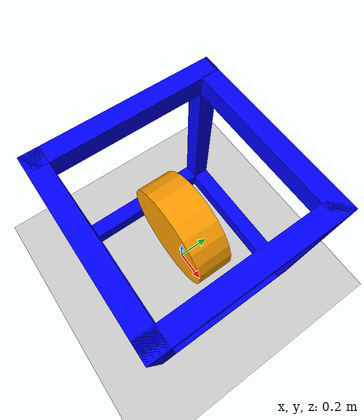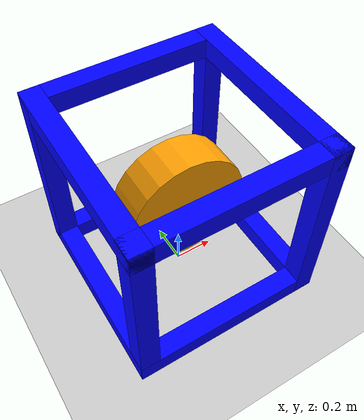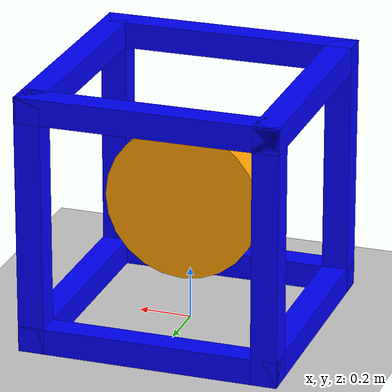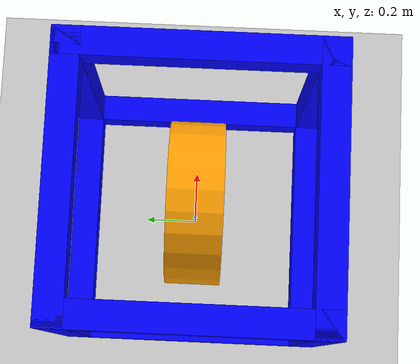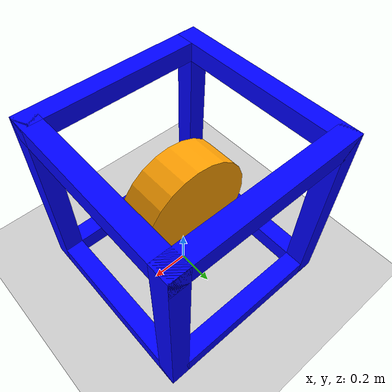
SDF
<?xml version='1.0' encoding='utf-8'?>
<sdf version="1.7">&lt;?xml version="1.0"?&gt;
	<world name="moving_cube">

		<physics name="1ms" type="ignored">
			<max_step_size>0.001</max_step_size>
			<real_time_factor>1.0</real_time_factor>
		</physics>
		<plugin
			filename="libignition-gazebo-physics-system.so"
			name="ignition::gazebo::systems::Physics">
		</plugin>
		<plugin
			filename="libignition-gazebo-user-commands-system.so"
			name="ignition::gazebo::systems::UserCommands">
		</plugin>
		<plugin
			filename="libignition-gazebo-scene-broadcaster-system.so"
			name="ignition::gazebo::systems::SceneBroadcaster">
		</plugin>

		<light type="directional" name="sun">
			<cast_shadows>true</cast_shadows>
			<pose>0 0 10 0 0 0</pose>
			<diffuse>0.8 0.8 0.8 1</diffuse>
			<specular>0.2 0.2 0.2 1</specular>
			<attenuation>
				<range>1000</range>
				<constant>0.9</constant>
				<linear>0.01</linear>
				<quadratic>0.001</quadratic>
			</attenuation>
			<direction>-0.5 0.1 -0.9</direction>
		</light>

		<model name="ground_plane">
			<static>true</static>
			<link name="link">
				<collision name="collision">
					<geometry>
					<plane>
						<normal>0 0 1</normal>
					</plane>
					</geometry>
				</collision>
				<visual name="visual">
					<geometry>
					<plane>
						<normal>0 0 1</normal>
						<size>100 100</size>
					</plane>
					</geometry>
					<material>
						<ambient>0.8 0.8 0.8 1</ambient>
						<diffuse>0.8 0.8 0.8 1</diffuse>
						<specular>0.8 0.8 0.8 1</specular>
					</material>
				</visual>
			</link>
		</model>

		<model name="robot">
			<link name="cube_frame">
				<inertial>
					<pose>0 0 0.5 0 0 0</pose>
					<mass>1</mass>
					<inertia>
						<ixx>0.10000000000000001</ixx>
						<ixy>0</ixy>
						<ixz>0</ixz>
						<iyy>0.10000000000000001</iyy>
						<iyz>0</iyz>
						<izz>0.10000000000000001</izz>
					</inertia>
				</inertial>
				<collision name="cube_frame_fixed_joint_lump__collision_collision">
					<pose>0 0 0.5 0 0 0</pose>
					<geometry>
						<box>
							<size>1 1 1</size>
						</box>
					</geometry>
				</collision>
				<visual name="cube_frame_fixed_joint_lump__ZXY_visual">
					<pose>0.45 0.45 0.5 0 0 0</pose>
					<geometry>
						<box>
							<size>0.1 0.1 1</size>
						</box>
					</geometry>
					<material>
						<diffuse>0 0 1 1</diffuse>
						<ambient>0 0 1 1</ambient>
					</material>
				</visual>
				<visual name="cube_frame_fixed_joint_lump__ZX_Y_visual_1">
					<pose>-0.45 0.45 0.5 0 0 0</pose>
					<geometry>
						<box>
							<size>0.1 0.1 1</size>
						</box>
					</geometry>
					<material>
						<diffuse>0 0 1 1</diffuse>
						<ambient>0 0 1 1</ambient>
					</material>
				</visual>
				<visual name="cube_frame_fixed_joint_lump__ZXY__visual_2">
					<pose>0.45 -0.45 0.5 0 0 0</pose>
					<geometry>
						<box>
							<size>0.1 0.1 1</size>
						</box>
					</geometry>
					<material>
						<diffuse>0 0 1 1</diffuse>
						<ambient>0 0 1 1</ambient>
					</material>
				</visual>
				<visual name="cube_frame_fixed_joint_lump__ZX_Y__visual_3">
					<pose>-0.45 -0.45 0.5 0 0 0</pose>
					<geometry>
						<box>
							<size>0.1 0.1 1</size>
						</box>
					</geometry>
					<material>
						<diffuse>0 0 1 1</diffuse>
						<ambient>0 0 1 1</ambient>
					</material>
				</visual>
				<visual name="cube_frame_fixed_joint_lump__XYZ_visual_4">
					<pose>0 0.45 0.95 0 1.570796326794897 0</pose>
					<geometry>
						<box>
							<size>0.1 0.1 1</size>
						</box>
					</geometry>
					<material>
						<diffuse>0 0 1 1</diffuse>
						<ambient>0 0 1 1</ambient>
					</material>
				</visual>
				<visual name="cube_frame_fixed_joint_lump__XY_Z_visual_5">
					<pose>0 -0.45 0.95 0 1.570796326794897 0</pose>
					<geometry>
						<box>
							<size>0.1 0.1 1</size>
						</box>
					</geometry>
					<material>
						<diffuse>0 0 1 1</diffuse>
						<ambient>0 0 1 1</ambient>
					</material>
				</visual>
				<visual name="cube_frame_fixed_joint_lump__XYZ__visual_6">
					<pose>0 0.45 0.05 0 1.570796326794897 0</pose>
					<geometry>
						<box>
							<size>0.1 0.1 1</size>
						</box>
					</geometry>
					<material>
						<diffuse>0 0 1 1</diffuse>
						<ambient>0 0 1 1</ambient>
					</material>
					</visual>
				<visual name="cube_frame_fixed_joint_lump__XY_Z__visual_7">
					<pose>0 -0.45 0.05 0 1.570796326794897 0</pose>
					<geometry>
						<box>
							<size>0.1 0.1 1</size>
						</box>
					</geometry>
					<material>
						<diffuse>0 0 1 1</diffuse>
						<ambient>0 0 1 1</ambient>
					</material>
				</visual>
				<visual name="cube_frame_fixed_joint_lump__YZX_visual_8">
					<pose>0.45 0 0.95 1.570796326794896 0 0</pose>
					<geometry>
						<box>
							<size>0.1 0.1 1</size>
						</box>
					</geometry>
					<material>
						<diffuse>0 0 1 1</diffuse>
						<ambient>0 0 1 1</ambient>
					</material>
				</visual>
				<visual name="cube_frame_fixed_joint_lump__YZ_X_visual_9">
					<pose>0.45 0 0.05 1.570796326794896 0 0</pose>
					<geometry>
						<box>
							<size>0.1 0.1 1</size>
						</box>
					</geometry>
					<material>
						<diffuse>0 0 1 1</diffuse>
						<ambient>0 0 1 1</ambient>
					</material>
				</visual>
				<visual name="cube_frame_fixed_joint_lump__YZX__visual_10">
					<pose>-0.45 0 0.95 1.570796326794896 0 0</pose>
					<geometry>
						<box>
							<size>0.1 0.1 1</size>
						</box>
					</geometry>
					<material>
						<diffuse>0 0 1 1</diffuse>
						<ambient>0 0 1 1</ambient>
					</material>
				</visual>
				<visual name="cube_frame_fixed_joint_lump__YZ_X__visual_11">
					<pose>-0.45 0 0.05 1.570796326794896 0 0</pose>
					<geometry>
						<box>
							<size>0.1 0.1 1</size>
						</box>
					</geometry>
					<material>
						<diffuse>0 0 1 1</diffuse>
						<ambient>0 0 1 1</ambient>
					</material>
				</visual>
			</link>
			<joint name="cube_disc_joint" type="revolute">
				<pose relative_to="cube_frame">0 0 0.5 0 0 0</pose>
				<parent>cube_frame</parent>
				<child>disc_link</child>
				<axis>
					<xyz>0 1 0</xyz>
					<limit>
						<effort>1000</effort>
						<velocity>100</velocity>
					</limit>
					<dynamics>
						<spring_reference>0</spring_reference>
						<spring_stiffness>0</spring_stiffness>
					</dynamics>
				</axis>
			</joint>
			<link name="disc_link">
				<pose relative_to="cube_disc_joint">0 0 0 0 0 0</pose>
				<inertial>
					<pose>0 0 0 0 0 0</pose>
					<mass>1</mass>
					<inertia>
						<ixx>0.10000000000000001</ixx>
						<ixy>0</ixy>
						<ixz>0</ixz>
						<iyy>0.10000000000000001</iyy>
						<iyz>0</iyz>
						<izz>0.10000000000000001</izz>
					</inertia>
				</inertial>
				<collision name="disc_link_fixed_joint_lump__disc_collision_collision">
					<pose>0 0 0 0 0 0</pose>
					<geometry>
						<cylinder>
							<length>0.20000000000000001</length>
							<radius>0.3</radius>
						</cylinder>
					</geometry>
				</collision>
				<visual name="disc_link_fixed_joint_lump__disc_visual">
					<pose>0 0 0 1.570796326794896 0 0</pose>
					<geometry>
						<cylinder>
							<length>0.20000000000000001</length>
							<radius>0.3</radius>
						</cylinder>
					</geometry>
					<material>
						<diffuse>1 0.625 0 1</diffuse>
						<ambient>1 0.625 0 1</ambient>
					</material>
				</visual>
			</link>

			<!-- JointController plugin to control the joint velocity -->
			<plugin filename="libignition-gazebo-joint-controller-system.so"
			name="ignition::gazebo::systems::JointController">
				<joint_name>cube_disc_joint</joint_name>
				<topic>cmd_vel</topic>
				<!-- PID controller for smooth velocity control -->
				<use_force_commands>true</use_force_commands>
				<p_gain>0.15</p_gain>
			</plugin>
		</model>

		<!-- Speed up the wheel when 'w' key is pressed -->
		<plugin filename="libignition-gazebo-triggered-publisher-system.so"
		name="ignition::gazebo::systems::TriggeredPublisher">
			<input type="ignition.msgs.Int32" topic="/keyboard/keypress">
				<match field="data">87</match> <!-- ASCII code for 'w' -->
			</input>
			<output type="ignition.msgs.Double" topic="/cmd_vel">
				data: 50.0
			</output>
		</plugin>

		<!-- Stop the wheel when the 'b' key is pressed -->
		<plugin filename="libignition-gazebo-triggered-publisher-system.so"
		name="ignition::gazebo::systems::TriggeredPublisher">
			<input type="ignition.msgs.Int32" topic="/keyboard/keypress">
				<match field="data">66</match> <!-- ASCII code for 'b' -->
			</input>
			<output type="ignition.msgs.Double" topic="/cmd_vel">
				data: 0.0
			</output>

		</plugin>

		<!-- Speed up the wheel when 's' key is pressed -->
		<plugin filename="libignition-gazebo-triggered-publisher-system.so"
		name="ignition::gazebo::systems::TriggeredPublisher">
			<input type="ignition.msgs.Int32" topic="/keyboard/keypress">
				<match field="data">83</match> <!-- ASCII code for 's' -->
			</input>
			<output type="ignition.msgs.Double" topic="/cmd_vel">
				data: -50.0
			</output>
		</plugin>

</world></sdf>
